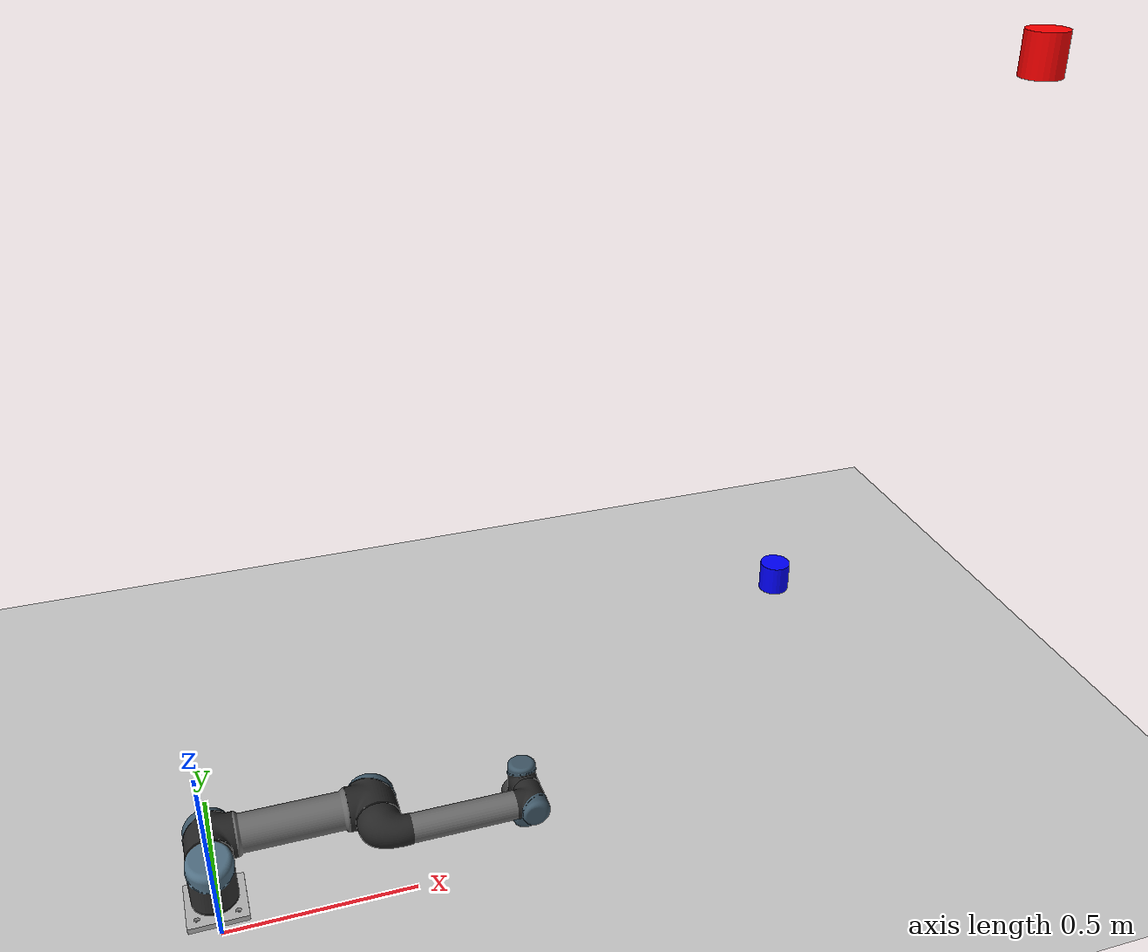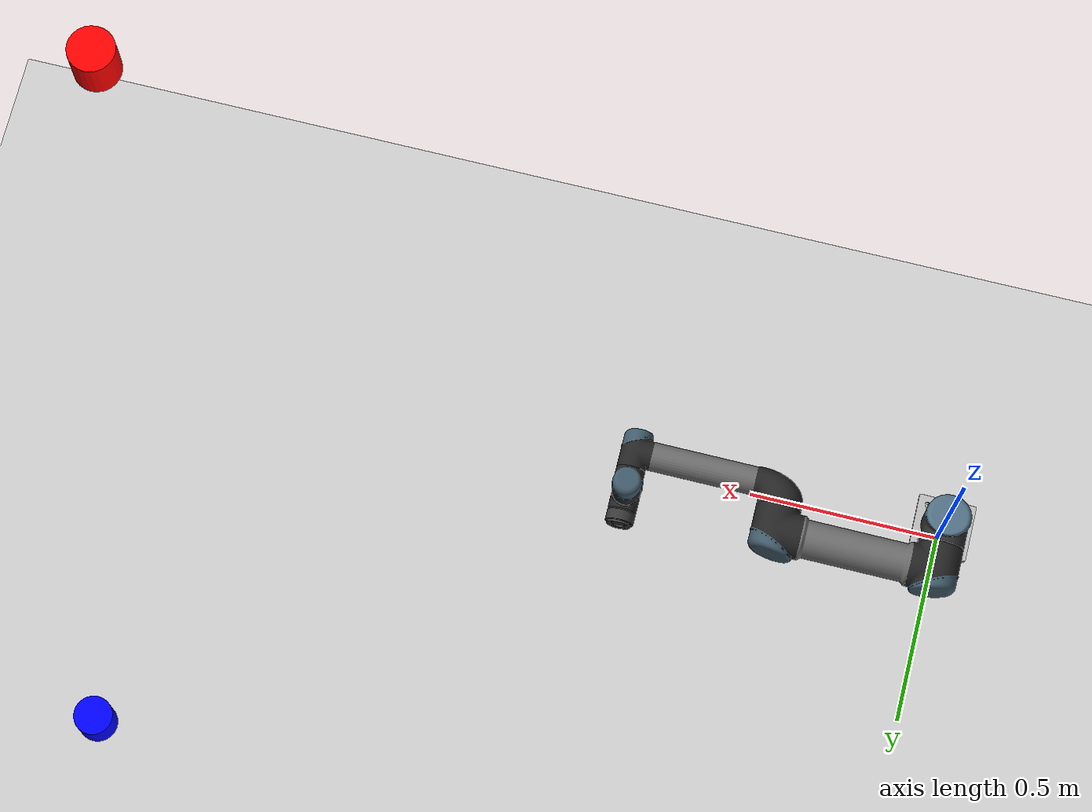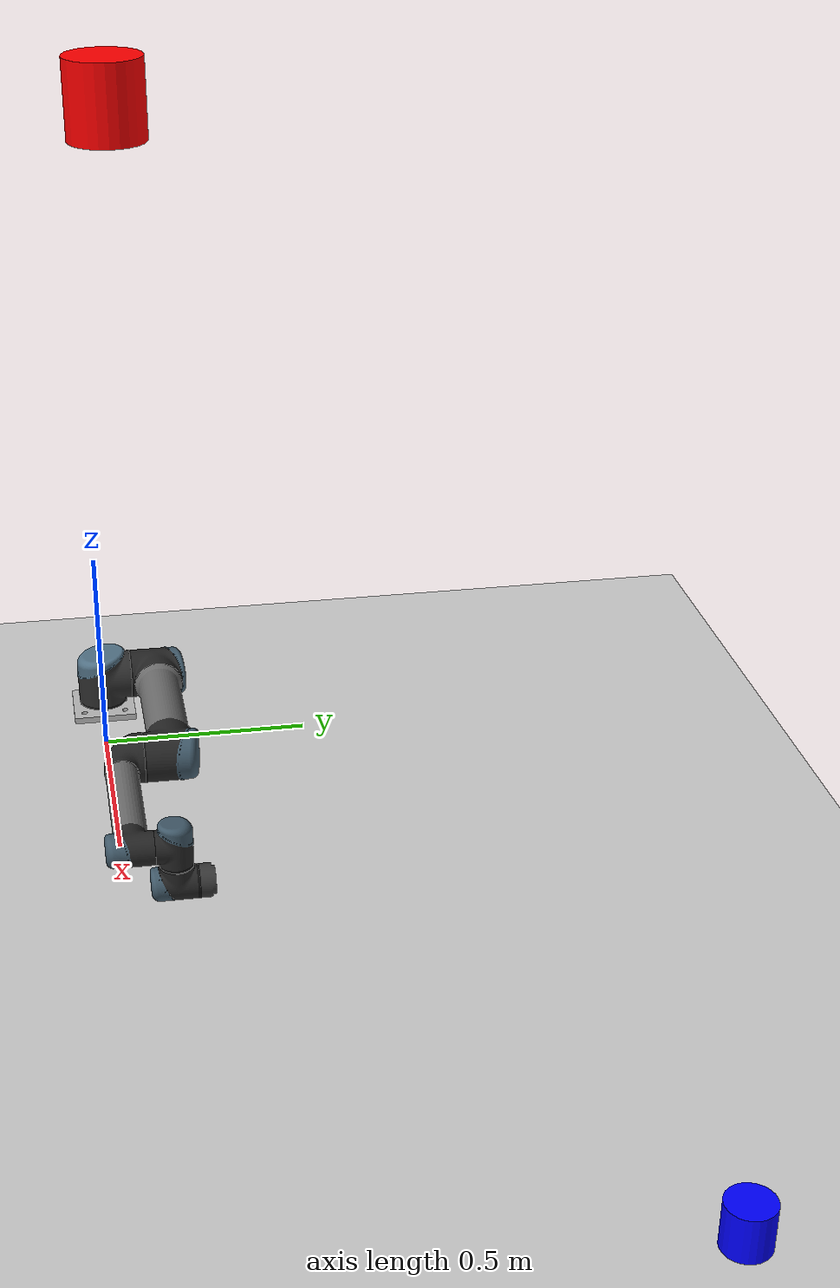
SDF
<sdf version="1.6">
 <world name="default">
  <light name="sun" type="directional">
   <pose>0 0 10 0 -0 0</pose>
   <diffuse>0.8 0.8 0.8 1</diffuse>
   <specular>0.1 0.1 0.1 1</specular>
   <attenuation>
    <range>1000</range>
    <constant>0.9</constant>
    <linear>0.01</linear>
    <quadratic>0.001</quadratic>
   </attenuation>
   <direction>-0.5 0.5 -1</direction>
  </light>
  <model name="ground_plane">
   <static>1</static>
   <link name="link">
    <collision name="collision">
     <geometry><plane><normal>0 0 1</normal><size>100 100</size></plane></geometry>
     <surface><friction><ode><mu>100</mu><mu2>50</mu2></ode></friction></surface>
    </collision>
    <visual name="visual">
     <cast_shadows>0</cast_shadows>
     <geometry><plane><normal>0 0 1</normal><size>100 100</size></plane></geometry>
     <material>
      <script><uri>file://media/materials/scripts/gazebo.material</uri><name>Gazebo/Grey</name></script>
     </material>
    </visual>
   </link>
  </model>
  <gravity>0 0 -9.8</gravity>
  <magnetic_field>6e-06 2.3e-05 -4.2e-05</magnetic_field>
  <atmosphere type="adiabatic"/>
  <physics name="default_physics" default="0" type="ode">
   <max_step_size>0.001</max_step_size>
   <real_time_factor>1</real_time_factor>
   <real_time_update_rate>1000</real_time_update_rate>
  </physics>
  <scene><ambient>0.4 0.4 0.4 1</ambient><background>0.7 0.7 0.7 1</background><shadows>1</shadows></scene>
  <spherical_coordinates>
   <surface_model>EARTH_WGS84</surface_model>
   <latitude_deg>0</latitude_deg>
   <longitude_deg>0</longitude_deg>
   <elevation>0</elevation>
   <heading_deg>0</heading_deg>
  </spherical_coordinates>
  <model name="my_object">
   <allow_auto_disable>0</allow_auto_disable>
   <static>0</static>
   <link name="link">
    <inertial>
     <mass>10</mass>
     <inertia>
      <ixx>0.014583</ixx>
      <ixy>0</ixy>
      <ixz>0</ixz>
      <iyy>0.014583</iyy>
      <iyz>0</iyz>
      <izz>0.002083</izz>
     </inertia>
    </inertial>
    <visual name="visual">
     <geometry><cylinder><length>0.1</length><radius>0.05</radius></cylinder></geometry>
     <material><diffuse>1 0 0 1</diffuse></material>
    </visual>
    <collision name="collision">
     <geometry><cylinder><length>0.1</length><radius>0.05</radius></cylinder></geometry>
     <surface>
      <bounce><restitution_coefficient>0.9</restitution_coefficient><threshold>0</threshold></bounce>
      <friction><ode><mu>0.003</mu><mu2>1</mu2></ode><torsional><ode><slip>0</slip></ode></torsional></friction>
      <contact>
       <collide_without_contact>0</collide_without_contact>
       <ode><max_vel>10000</max_vel><kp>1e+11</kp><kd>0</kd></ode>
      </contact>
     </surface>
    </collision>
   </link>
   <pose>2 0 2 0 -0 0</pose>
  </model>
  <model name="robot">
   <link name="base_link">
    <inertial>
     <mass>4</mass>
     <inertia>
      <ixx>0.00443333</ixx>
      <ixy>0</ixy>
      <ixz>0</ixz>
      <iyy>0.00443333</iyy>
      <iyz>0</iyz>
      <izz>0.0072</izz>
     </inertia>
    </inertial>
    <collision name="base_link_collision">
     <geometry>
      <mesh>
       <scale>1 1 1</scale>
       <uri>/home/modmanvision/catkin_ws/src/universal_robot/ur_description/meshes/ur5/collision/base.stl</uri>
      </mesh>
     </geometry>
    </collision>
    <visual name="base_link_visual">
     <geometry>
      <mesh>
       <scale>1 1 1</scale>
       <uri>/home/modmanvision/catkin_ws/src/universal_robot/ur_description/meshes/ur5/visual/base.dae</uri>
      </mesh>
     </geometry>
    </visual>
   </link>
   <joint name="world_joint" type="revolute">
    <child>base_link</child>
    <parent>world</parent>
    <axis>
     <limit><lower>0</lower><upper>0</upper></limit>
     <dynamics>
      <damping>0</damping>
      <friction>0</friction>
      <spring_reference>0</spring_reference>
      <spring_stiffness>0</spring_stiffness>
     </dynamics>
     <use_parent_model_frame>1</use_parent_model_frame>
     <xyz>0 0 1</xyz>
    </axis>
   </joint>
   <link name="shoulder_link">
    <pose>0 0 0.089159 0 -0 0</pose>
    <inertial>
     <mass>3.7</mass>
     <inertia>
      <ixx>0.0102675</ixx>
      <ixy>0</ixy>
      <ixz>0</ixz>
      <iyy>0.0102675</iyy>
      <iyz>0</iyz>
      <izz>0.00666</izz>
     </inertia>
    </inertial>
    <collision name="shoulder_link_collision">
     <geometry>
      <mesh>
       <scale>1 1 1</scale>
       <uri>/home/modmanvision/catkin_ws/src/universal_robot/ur_description/meshes/ur5/collision/shoulder.stl</uri>
      </mesh>
     </geometry>
    </collision>
    <visual name="shoulder_link_visual">
     <geometry>
      <mesh>
       <scale>1 1 1</scale>
       <uri>/home/modmanvision/catkin_ws/src/universal_robot/ur_description/meshes/ur5/visual/shoulder.dae</uri>
      </mesh>
     </geometry>
     <material><script><uri>__default__</uri><name>__default__</name></script></material>
    </visual>
    <self_collide>1</self_collide>
   </link>
   <joint name="shoulder_pan_joint" type="revolute">
    <child>shoulder_link</child>
    <parent>base_link</parent>
    <axis>
     <xyz>0 0 1</xyz>
     <limit><lower>-6.28319</lower><upper>6.28319</upper><effort>150</effort><velocity>3.15</velocity></limit>
     <dynamics>
      <damping>0</damping>
      <friction>0</friction>
      <spring_reference>0</spring_reference>
      <spring_stiffness>0</spring_stiffness>
     </dynamics>
     <use_parent_model_frame>1</use_parent_model_frame>
    </axis>
   </joint>
   <link name="upper_arm_link">
    <pose>0 0.13585 0.089159 3.14159 1.57079 3.14159</pose>
    <inertial>
     <pose>0 0 0.28 0 -0 0</pose>
     <mass>8.393</mass>
     <inertia>
      <ixx>0.226891</ixx>
      <ixy>0</ixy>
      <ixz>0</ixz>
      <iyy>0.226891</iyy>
      <iyz>0</iyz>
      <izz>0.0151074</izz>
     </inertia>
    </inertial>
    <collision name="upper_arm_link_collision">
     <geometry>
      <mesh>
       <scale>1 1 1</scale>
       <uri>/home/modmanvision/catkin_ws/src/universal_robot/ur_description/meshes/ur5/collision/upperarm.stl</uri>
      </mesh>
     </geometry>
    </collision>
    <visual name="upper_arm_link_visual">
     <geometry>
      <mesh>
       <scale>1 1 1</scale>
       <uri>/home/modmanvision/catkin_ws/src/universal_robot/ur_description/meshes/ur5/visual/upperarm.dae</uri>
      </mesh>
     </geometry>
     <material><script><uri>__default__</uri><name>__default__</name></script></material>
    </visual>
    <self_collide>1</self_collide>
   </link>
   <joint name="shoulder_lift_joint" type="revolute">
    <child>upper_arm_link</child>
    <parent>shoulder_link</parent>
    <axis>
     <xyz>0 1 0</xyz>
     <limit><lower>-6.28319</lower><upper>6.28319</upper><effort>150</effort><velocity>3.15</velocity></limit>
     <dynamics>
      <damping>0</damping>
      <friction>0</friction>
      <spring_reference>0</spring_reference>
      <spring_stiffness>0</spring_stiffness>
     </dynamics>
     <use_parent_model_frame>1</use_parent_model_frame>
    </axis>
   </joint>
   <link name="forearm_link">
    <pose>0.425 0.01615 0.089159 3.14159 1.57079 3.14159</pose>
    <inertial>
     <pose>0 0 0.25 0 -0 0</pose>
     <mass>2.275</mass>
     <inertia>
      <ixx>0.0494433</ixx>
      <ixy>0</ixy>
      <ixz>0</ixz>
      <iyy>0.0494433</iyy>
      <iyz>0</iyz>
      <izz>0.004095</izz>
     </inertia>
    </inertial>
    <collision name="forearm_link_collision">
     <geometry>
      <mesh>
       <scale>1 1 1</scale>
       <uri>/home/modmanvision/catkin_ws/src/universal_robot/ur_description/meshes/ur5/collision/forearm.stl</uri>
      </mesh>
     </geometry>
    </collision>
    <visual name="forearm_link_visual">
     <geometry>
      <mesh>
       <scale>1 1 1</scale>
       <uri>/home/modmanvision/catkin_ws/src/universal_robot/ur_description/meshes/ur5/visual/forearm.dae</uri>
      </mesh>
     </geometry>
     <material><script><uri>__default__</uri><name>__default__</name></script></material>
    </visual>
    <self_collide>1</self_collide>
   </link>
   <joint name="elbow_joint" type="revolute">
    <child>forearm_link</child>
    <parent>upper_arm_link</parent>
    <axis>
     <xyz>0 1 0</xyz>
     <limit><lower>-3.14159</lower><upper>3.14159</upper><effort>150</effort><velocity>3.15</velocity></limit>
     <dynamics>
      <damping>0</damping>
      <friction>0</friction>
      <spring_reference>0</spring_reference>
      <spring_stiffness>0</spring_stiffness>
     </dynamics>
     <use_parent_model_frame>1</use_parent_model_frame>
    </axis>
   </joint>
   <link name="wrist_1_link">
    <pose>0.81725 0.01615 0.089159 3.14159 -0 3.14159</pose>
    <inertial>
     <mass>1.219</mass>
     <inertia>
      <ixx>0.111173</ixx>
      <ixy>0</ixy>
      <ixz>0</ixz>
      <iyy>0.111173</iyy>
      <iyz>0</iyz>
      <izz>0.21942</izz>
     </inertia>
    </inertial>
    <collision name="wrist_1_link_collision">
     <geometry>
      <mesh>
       <scale>1 1 1</scale>
       <uri>/home/modmanvision/catkin_ws/src/universal_robot/ur_description/meshes/ur5/collision/wrist1.stl</uri>
      </mesh>
     </geometry>
    </collision>
    <visual name="wrist_1_link_visual">
     <geometry>
      <mesh>
       <scale>1 1 1</scale>
       <uri>/home/modmanvision/catkin_ws/src/universal_robot/ur_description/meshes/ur5/visual/wrist1.dae</uri>
      </mesh>
     </geometry>
     <material><script><uri>__default__</uri><name>__default__</name></script></material>
    </visual>
    <self_collide>1</self_collide>
   </link>
   <joint name="wrist_1_joint" type="revolute">
    <child>wrist_1_link</child>
    <parent>forearm_link</parent>
    <axis>
     <xyz>0 1 0</xyz>
     <limit><lower>-6.28319</lower><upper>6.28319</upper><effort>28</effort><velocity>3.2</velocity></limit>
     <dynamics>
      <damping>0</damping>
      <friction>0</friction>
      <spring_reference>0</spring_reference>
      <spring_stiffness>0</spring_stiffness>
     </dynamics>
     <use_parent_model_frame>1</use_parent_model_frame>
    </axis>
   </joint>
   <link name="wrist_2_link">
    <pose>0.81725 0.10915 0.089159 3.14159 -0 3.14159</pose>
    <inertial>
     <mass>1.219</mass>
     <inertia>
      <ixx>0.111173</ixx>
      <ixy>0</ixy>
      <ixz>0</ixz>
      <iyy>0.111173</iyy>
      <iyz>0</iyz>
      <izz>0.21942</izz>
     </inertia>
    </inertial>
    <collision name="wrist_2_link_collision">
     <geometry>
      <mesh>
       <scale>1 1 1</scale>
       <uri>/home/modmanvision/catkin_ws/src/universal_robot/ur_description/meshes/ur5/collision/wrist2.stl</uri>
      </mesh>
     </geometry>
    </collision>
    <visual name="wrist_2_link_visual">
     <geometry>
      <mesh>
       <scale>1 1 1</scale>
       <uri>/home/modmanvision/catkin_ws/src/universal_robot/ur_description/meshes/ur5/visual/wrist2.dae</uri>
      </mesh>
     </geometry>
     <material><script><uri>__default__</uri><name>__default__</name></script></material>
    </visual>
    <self_collide>1</self_collide>
   </link>
   <joint name="wrist_2_joint" type="revolute">
    <child>wrist_2_link</child>
    <parent>wrist_1_link</parent>
    <axis>
     <xyz>0 0 -1</xyz>
     <limit><lower>-6.28319</lower><upper>6.28319</upper><effort>28</effort><velocity>3.2</velocity></limit>
     <dynamics>
      <damping>0</damping>
      <friction>0</friction>
      <spring_reference>0</spring_reference>
      <spring_stiffness>0</spring_stiffness>
     </dynamics>
     <use_parent_model_frame>1</use_parent_model_frame>
    </axis>
   </joint>
   <link name="wrist_3_link">
    <pose>0.81725 0.10915 -0.005491 3.14159 -0 3.14159</pose>
    <inertial>
     <mass>0.1879</mass>
     <inertia>
      <ixx>0.0171365</ixx>
      <ixy>0</ixy>
      <ixz>0</ixz>
      <iyy>0.0171365</iyy>
      <iyz>0</iyz>
      <izz>0.033822</izz>
     </inertia>
    </inertial>
    <collision name="wrist_3_link_collision">
     <geometry>
      <mesh>
       <scale>1 1 1</scale>
       <uri>/home/modmanvision/catkin_ws/src/universal_robot/ur_description/meshes/ur5/collision/wrist3.stl</uri>
      </mesh>
     </geometry>
    </collision>
    <collision name="wrist_3_link_fixed_joint_lump__ee_link_collision_1">
     <pose>-0 0.0723 0 0 -0 1.5708</pose>
     <geometry><box><size>0.01 0.01 0.01</size></box></geometry>
    </collision>
    <visual name="wrist_3_link_visual">
     <geometry>
      <mesh>
       <scale>1 1 1</scale>
       <uri>/home/modmanvision/catkin_ws/src/universal_robot/ur_description/meshes/ur5/visual/wrist3.dae</uri>
      </mesh>
     </geometry>
     <material><script><uri>__default__</uri><name>__default__</name></script></material>
    </visual>
    <self_collide>1</self_collide>
   </link>
   <joint name="wrist_3_joint" type="revolute">
    <child>wrist_3_link</child>
    <parent>wrist_2_link</parent>
    <axis>
     <xyz>0 1 0</xyz>
     <limit><lower>-6.28319</lower><upper>6.28319</upper><effort>28</effort><velocity>3.2</velocity></limit>
     <dynamics>
      <damping>0</damping>
      <friction>0</friction>
      <spring_reference>0</spring_reference>
      <spring_stiffness>0</spring_stiffness>
     </dynamics>
     <use_parent_model_frame>1</use_parent_model_frame>
    </axis>
   </joint>
   <static>0</static>
   <plugin name="ros_control" filename="libgazebo_ros_control.so"><robotNamespace>/</robotNamespace></plugin>
   <pose>0 0 0.1 0 -0 0</pose>
  </model>
  <model name="my_target">
   <static>1</static>
   <link name="link">
    <visual name="visual">
     <geometry><cylinder><length>0.1</length><radius>0.05</radius></cylinder></geometry>
     <material><diffuse>0 0 1 1</diffuse></material>
    </visual>
   </link>
   <pose>2 1 0.05 0 -0 0</pose>
  </model>
 </world>
</sdf>
